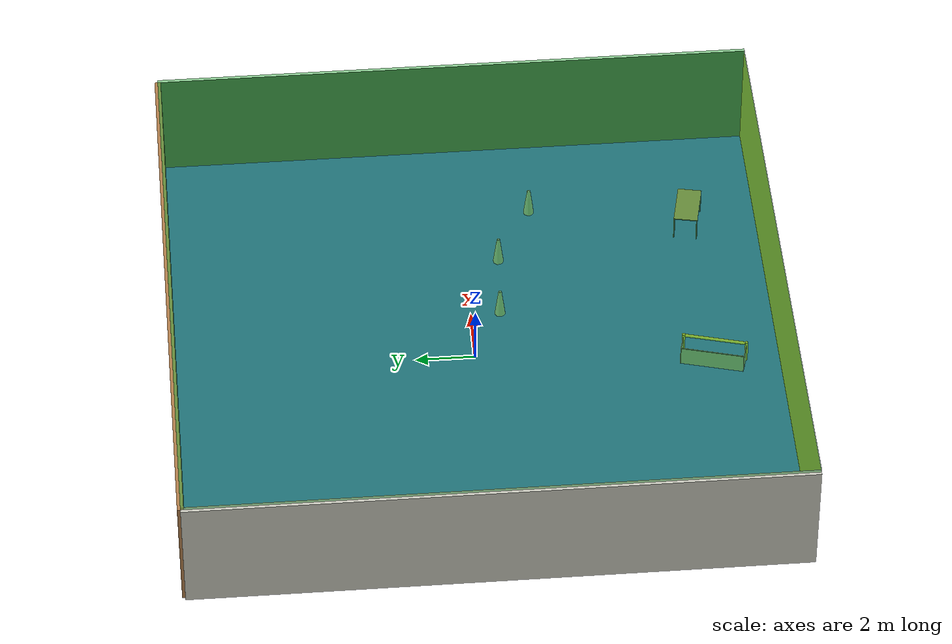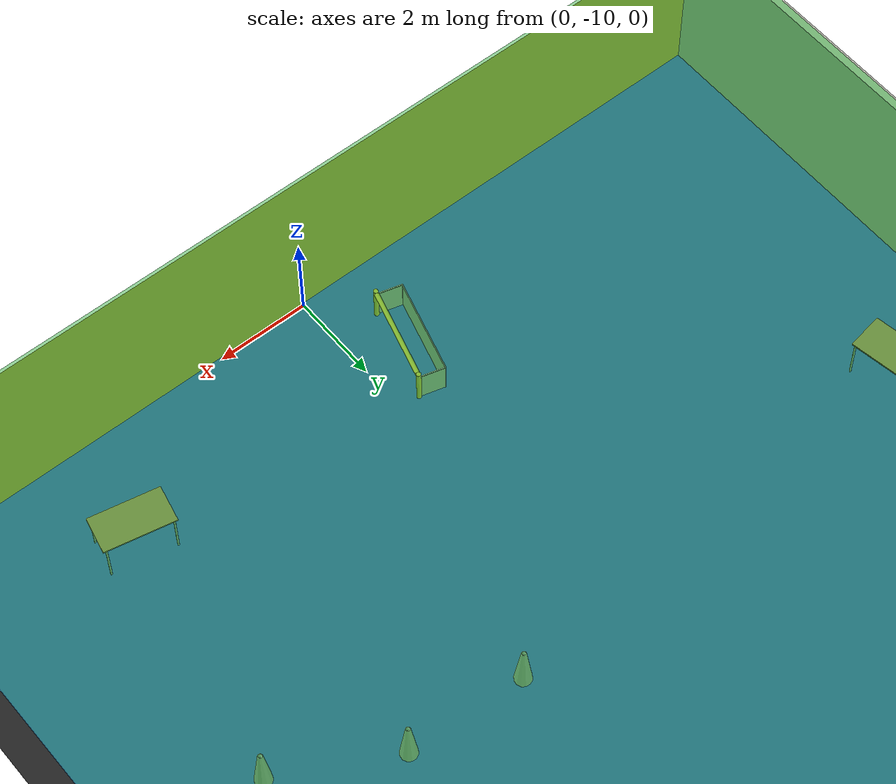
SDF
<sdf version="1.4">
 <world name="default">
  <physics type="ode">
   <max_step_size>0.001</max_step_size>
   <real_time_factor>1</real_time_factor>
   <real_time_update_rate>1000</real_time_update_rate>
   <gravity>0 0 -9.8</gravity>
  </physics>
  <scene><ambient>0.4 0.4 0.4 1</ambient><background>0.7 0.7 0.7 1</background><shadows>1</shadows></scene>
  <model name="Surrounding">
   <static>1</static>
   <link name="Ceiling">
    <collision name="Ceiling_Collision"><geometry><box><size>20 20 0.1</size></box></geometry></collision>
    <visual name="Ceiling_Visual">
     <geometry><box><size>20 20 0.1</size></box></geometry>
     <material>
      <script><uri>file://media/materials/scripts/gazebo.material</uri><name>Gazebo/GreenTransparent</name></script>
     </material>
    </visual>
    <pose>0 0 4.05 0 0 0</pose>
   </link>
   <link name="Wall_South">
    <collision name="Wall_South_Collision">
     <geometry><box><size>20 0 4</size></box></geometry>
     <pose>0 0 2 0 -0 0</pose>
    </collision>
    <visual name="Wall_South_Visual">
     <pose>0 0 2 0 -0 0</pose>
     <geometry><box><size>20 0 4</size></box></geometry>
     <material>
      <script><uri>file://media/materials/scripts/gazebo.material</uri><name>Gazebo/Gold</name></script>
     </material>
    </visual>
    <velocity_decay><linear>0</linear><angular>0</angular></velocity_decay>
    <pose>0 -10 0 0 -0 0</pose>
   </link>
   <link name="Wall_East">
    <collision name="Wall_21_Collision">
     <geometry><box><size>20 0 4</size></box></geometry>
     <pose>0 0 2 0 -0 0</pose>
    </collision>
    <visual name="Wall_21_Visual">
     <pose>0 0 2 0 -0 0</pose>
     <geometry><box><size>20 0 4</size></box></geometry>
     <material>
      <script><uri>file://media/materials/scripts/gazebo.material</uri><name>Gazebo/Road</name></script>
     </material>
    </visual>
    <velocity_decay><linear>0</linear><angular>0</angular></velocity_decay>
    <pose>10 0 0 0 -0 1.5708</pose>
   </link>
   <link name="Wall_North">
    <collision name="Wall_22_Collision">
     <geometry><box><size>20 0.2 4</size></box></geometry>
     <pose>0 0 2 0 -0 0</pose>
    </collision>
    <visual name="Wall_22_Visual">
     <pose>0 0 2 0 -0 0</pose>
     <geometry><box><size>20 0.2 4</size></box></geometry>
     <material>
      <script><uri>file://media/materials/scripts/gazebo.material</uri><name>Gazebo/WoodFloor</name></script>
     </material>
    </visual>
    <velocity_decay><linear>0</linear><angular>0</angular></velocity_decay>
    <pose>0 10 0 0 -0 0</pose>
   </link>
   <link name="Wall_West">
    <collision name="Wall_23_Collision">
     <geometry><box><size>20 0.2 4</size></box></geometry>
     <pose>0 0 2 0 -0 0</pose>
    </collision>
    <visual name="Wall_23_Visual">
     <pose>0 0 2 0 -0 0</pose>
     <geometry><box><size>20 0.2 4</size></box></geometry>
     <material>
      <script><uri>file://media/materials/scripts/gazebo.material</uri><name>Gazebo/PaintedWall</name></script>
     </material>
    </visual>
    <velocity_decay><linear>0</linear><angular>0</angular></velocity_decay>
    <pose>-10 0 0 0 0 -1.5708</pose>
   </link>
   <link name="Ground_link">
    <collision name="collision">
     <pose>0 0 .05 0 -0 0</pose>
     <geometry><box><size>20 20 0.1</size></box></geometry>
    </collision>
    <visual name="visual">
     <pose>0 0 .05 0 -0 0</pose>
     <geometry><box><size>20 20 0.1</size></box></geometry>
     <material>
      <script><uri>file://media/materials/scripts/gazebo.material</uri><name>Gazebo/BlueGlow</name></script>
     </material>
    </visual>
   </link>
   <static>1</static>
  </model>
  <spherical_coordinates>
   <surface_model>EARTH_WGS84</surface_model>
   <latitude_deg>0</latitude_deg>
   <longitude_deg>0</longitude_deg>
   <elevation>0</elevation>
   <heading_deg>0</heading_deg>
  </spherical_coordinates>
  <light name="lightball_0" type="diffuse">
   <diffuse>0.8 0.8 0.8 1</diffuse>
   <specular>0.2 0.2 0.2 1</specular>
   <attenuation>
    <range>100</range>
    <constant>0.7</constant>
    <linear>0.01</linear>
    <quadratic>0.001</quadratic>
   </attenuation>
   <direction>-0.5 0.1 -0.9</direction>
   <pose>4.02013098869 -1.3049462983 1.78896450579 0 0 0</pose>
  </light>
  <light name="lightball_1" type="diffuse">
   <diffuse>0.8 0.8 0.8 1</diffuse>
   <specular>0.2 0.2 0.2 1</specular>
   <attenuation>
    <range>100</range>
    <constant>0.7</constant>
    <linear>0.01</linear>
    <quadratic>0.001</quadratic>
   </attenuation>
   <direction>-0.5 0.1 -0.9</direction>
   <pose>6.55567884837 3.9423055596 1.52943119398 0 0 0</pose>
  </light>
  <light name="lightball_2" type="diffuse">
   <diffuse>0.8 0.8 0.8 1</diffuse>
   <specular>0.2 0.2 0.2 1</specular>
   <attenuation>
    <range>100</range>
    <constant>0.7</constant>
    <linear>0.01</linear>
    <quadratic>0.001</quadratic>
   </attenuation>
   <direction>-0.5 0.1 -0.9</direction>
   <pose>-5.75960610128 9.31102671041 2.55253337855 0 0 0</pose>
  </light>
  <light name="lightball_3" type="diffuse">
   <diffuse>0.8 0.8 0.8 1</diffuse>
   <specular>0.2 0.2 0.2 1</specular>
   <attenuation>
    <range>100</range>
    <constant>0.7</constant>
    <linear>0.01</linear>
    <quadratic>0.001</quadratic>
   </attenuation>
   <direction>-0.5 0.1 -0.9</direction>
   <pose>-5.84925249314 -0.636624079605 2.64293093522 0 0 0</pose>
  </light>
  <light name="lightball_4" type="diffuse">
   <diffuse>0.8 0.8 0.8 1</diffuse>
   <specular>0.2 0.2 0.2 1</specular>
   <attenuation>
    <range>100</range>
    <constant>0.7</constant>
    <linear>0.01</linear>
    <quadratic>0.001</quadratic>
   </attenuation>
   <direction>-0.5 0.1 -0.9</direction>
   <pose>8.77357012838 3.58342296324 2.99668027312 0 0 0</pose>
  </light>
  <light name="lightball_5" type="diffuse">
   <diffuse>0.8 0.8 0.8 1</diffuse>
   <specular>0.2 0.2 0.2 1</specular>
   <attenuation>
    <range>100</range>
    <constant>0.7</constant>
    <linear>0.01</linear>
    <quadratic>0.001</quadratic>
   </attenuation>
   <direction>-0.5 0.1 -0.9</direction>
   <pose>3.40262249114 -6.24354754815 3.71908007417 0 0 0</pose>
  </light>
  <light name="lightball_6" type="diffuse">
   <diffuse>0.8 0.8 0.8 1</diffuse>
   <specular>0.2 0.2 0.2 1</specular>
   <attenuation>
    <range>100</range>
    <constant>0.7</constant>
    <linear>0.01</linear>
    <quadratic>0.001</quadratic>
   </attenuation>
   <direction>-0.5 0.1 -0.9</direction>
   <pose>3.78549744026 0.937190912675 2.50724300076 0 0 0</pose>
  </light>
  <light name="lightball_7" type="diffuse">
   <diffuse>0.8 0.8 0.8 1</diffuse>
   <specular>0.2 0.2 0.2 1</specular>
   <attenuation>
    <range>100</range>
    <constant>0.7</constant>
    <linear>0.01</linear>
    <quadratic>0.001</quadratic>
   </attenuation>
   <direction>-0.5 0.1 -0.9</direction>
   <pose>3.73346629746 2.46930928258 3.31084544195 0 0 0</pose>
  </light>
  <include><uri>model://table</uri><pose>-7.73906116742 -1.39603274204 0 0 0 1.73705363598</pose></include>
  <include>
   <uri>model://robocup_3Dsim_goal</uri>
   <pose>-0.682246103388 -7.86372358823 0 0 0 2.87377829708</pose>
  </include>
  <include>
   <uri>model://construction_cone</uri>
   <pose>1.90413408595 -0.963962842885 0 0 0 0.688693039422</pose>
  </include>
  <include><uri>model://table</uri><pose>5.69652704439 -7.66922474026 0 0 0 2.93465859634</pose></include>
  <include>
   <uri>model://construction_cone</uri>
   <pose>4.42332809274 -1.12324334956 0 0 0 2.32831870156</pose>
  </include>
  <include>
   <uri>model://construction_cone</uri>
   <pose>6.74098045966 -2.35396669465 0 0 0 0.884310019402</pose>
  </include>
 </world>
</sdf>

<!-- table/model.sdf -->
<sdf version="1.5">
  <model name="table">
    <static>true</static>
    <link name="link">
      <collision name="surface">
        <pose>0 0 1.0 0 0 0</pose>
        <geometry>
          <box>
            <size>1.5 0.8 0.03</size>
          </box>
        </geometry>
        <surface>
          <friction>
            <ode>
              <mu>0.6</mu>
              <mu2>0.6</mu2>
            </ode>
          </friction>
        </surface>
      </collision>
      <visual name="visual1">
        <pose>0 0 1.0 0 0 0</pose>
        <geometry>
          <box>
            <size>1.5 0.8 0.03</size>
          </box>
        </geometry>
        <material>
          <script>
            <uri>model://media/materials/scripts/gazebo.material</uri>
            <name>Gazebo/Wood</name>
          </script>
        </material>
      </visual>
      <collision name="front_left_leg">
        <pose>0.68 0.38 0.5 0 0 0</pose>
        <geometry>
          <cylinder>
            <radius>0.02</radius>
            <length>1.0</length>
          </cylinder>
        </geometry>
      </collision>
      <visual name="front_left_leg">
        <pose>0.68 0.38 0.5 0 0 0</pose>
        <geometry>
          <cylinder>
            <radius>0.02</radius>
            <length>1.0</length>
          </cylinder>
        </geometry>
        <material>
          <script>
            <uri>model://media/materials/scripts/gazebo.material</uri>
            <name>Gazebo/Grey</name>
          </script>
        </material>
      </visual>
      <collision name="front_right_leg">
        <pose>0.68 -0.38 0.5 0 0 0</pose>
        <geometry>
          <cylinder>
            <radius>0.02</radius>
            <length>1.0</length>
          </cylinder>
        </geometry>
      </collision>
      <visual name="front_right_leg">
        <pose>0.68 -0.38 0.5 0 0 0</pose>
        <geometry>
          <cylinder>
            <radius>0.02</radius>
            <length>1.0</length>
          </cylinder>
        </geometry>
        <material>
          <script>
            <uri>model://media/materials/scripts/gazebo.material</uri>
            <name>Gazebo/Grey</name>
          </script>
        </material>
      </visual>
      <collision name="back_right_leg">
        <pose>-0.68 -0.38 0.5 0 0 0</pose>
        <geometry>
          <cylinder>
            <radius>0.02</radius>
            <length>1.0</length>
          </cylinder>
        </geometry>
      </collision>
      <visual name="back_right_leg">
        <pose>-0.68 -0.38 0.5 0 0 0</pose>
        <geometry>
          <cylinder>
            <radius>0.02</radius>
            <length>1.0</length>
          </cylinder>
        </geometry>
        <material>
          <script>
            <uri>model://media/materials/scripts/gazebo.material</uri>
            <name>Gazebo/Grey</name>
          </script>
        </material>
      </visual>
      <collision name="back_left_leg">
        <pose>-0.68 0.38 0.5 0 0 0</pose>
        <geometry>
          <cylinder>
            <radius>0.02</radius>
            <length>1.0</length>
          </cylinder>
        </geometry>
      </collision>
      <visual name="back_left_leg">
        <pose>-0.68 0.38 0.5 0 0 0</pose>
        <geometry>
          <cylinder>
            <radius>0.02</radius>
            <length>1.0</length>
          </cylinder>
        </geometry>
        <material>
          <script>
            <uri>model://media/materials/scripts/gazebo.material</uri>
            <name>Gazebo/Grey</name>
          </script>
        </material>
      </visual>
    </link>
  </model>
</sdf>

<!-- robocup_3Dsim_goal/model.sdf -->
<sdf version="1.5">
  <model name="robocup_3d_goal">
    <static>true</static>
    <link name="left_post">
      <pose>0 1.05 0.45 0 0 0</pose>
      <collision name="collision">
        <geometry>
          <cylinder>
            <radius>0.05</radius>
            <length>0.9</length>
          </cylinder>
        </geometry>
      </collision>
      <visual name="visual">
        <geometry>
          <cylinder>
            <radius>0.05</radius>
            <length>0.9</length>
          </cylinder>
        </geometry>
        <material>
          <script>
            <uri>file://media/materials/scripts/gazebo.material</uri>
            <name>Gazebo/ZincYellow</name>
          </script>
        </material>
      </visual>
    </link>
    <link name="left_support_horiz_lower">
      <pose>0.30 1.05 0.01 0 0 0</pose>
      <collision name="collision">
        <geometry>
          <box>
            <size>0.50 0.02 0.02</size>
          </box>
        </geometry>
      </collision>
      <visual name="visual">
        <geometry>
          <box>
            <size>0.50 0.02 0.02</size>
          </box>
        </geometry>
        <material>
          <script>
            <uri>file://media/materials/scripts/gazebo.material</uri>
            <name>Gazebo/White</name>
          </script>
        </material>
      </visual>
    </link>
    <link name="left_support_horiz_upper">
      <pose>0.30 1.05 0.79 0 0 0</pose>
      <collision name="collision">
        <geometry>
          <box>
            <size>0.50 0.02 0.02</size>
          </box>
        </geometry>
      </collision>
      <visual name="visual">
        <geometry>
          <box>
            <size>0.50 0.02 0.02</size>
          </box>
        </geometry>
        <material>
          <script>
            <uri>file://media/materials/scripts/gazebo.material</uri>
            <name>Gazebo/White</name>
          </script>
        </material>
      </visual>
    </link>
    <link name="left_support_vertical">
      <pose>0.56 1.05 0.4 0 1.5708 0</pose>
      <collision name="collision">
        <geometry>
          <box>
            <size>0.80 0.02 0.02</size>
          </box>
        </geometry>
      </collision>
      <visual name="visual">
        <geometry>
          <box>
            <size>0.80 0.02 0.02</size>
          </box>
        </geometry>
        <material>
          <script>
            <uri>file://media/materials/scripts/gazebo.material</uri>
            <name>Gazebo/White</name>
          </script>
        </material>
      </visual>
    </link>
    <link name="right_support_horiz_lower">
      <pose>0.30 -1.05 0.01 0 0 0</pose>
      <collision name="collision">
        <geometry>
          <box>
            <size>0.50 0.02 0.02</size>
          </box>
        </geometry>
      </collision>
      <visual name="visual">
        <geometry>
          <box>
            <size>0.50 0.02 0.02</size>
          </box>
        </geometry>
        <material>
          <script>
            <uri>file://media/materials/scripts/gazebo.material</uri>
            <name>Gazebo/White</name>
          </script>
        </material>
      </visual>
    </link>
    <link name="right_support_horiz_upper">
      <pose>0.30 -1.05 0.79 0 0 0</pose>
      <collision name="collision">
        <geometry>
          <box>
            <size>0.50 0.02 0.02</size>
          </box>
        </geometry>
      </collision>
      <visual name="visual">
        <geometry>
          <box>
            <size>0.50 0.02 0.02</size>
          </box>
        </geometry>
        <material>
          <script>
            <uri>file://media/materials/scripts/gazebo.material</uri>
            <name>Gazebo/White</name>
          </script>
        </material>
      </visual>
    </link>
    <link name="right_support_vertical">
      <pose>0.56 -1.05 0.4 0 1.5708 0</pose>
      <collision name="collision">
        <geometry>
          <box>
            <size>0.80 0.02 0.02</size>
          </box>
        </geometry>
      </collision>
      <visual name="visual">
        <geometry>
          <box>
            <size>0.80 0.02 0.02</size>
          </box>
        </geometry>
        <material>
          <script>
            <uri>file://media/materials/scripts/gazebo.material</uri>
            <name>Gazebo/White</name>
          </script>
        </material>
      </visual>
    </link>
    <link name="center_support_horiz_lower">
      <pose>0.56 0 0.01 0 1.5708 0</pose>
      <collision name="collision">
        <geometry>
          <box>
            <size>0.02 2.08 0.02</size>
          </box>
        </geometry>
      </collision>
      <visual name="visual">
        <geometry>
          <box>
            <size>0.02 2.08 0.02</size>
          </box>
        </geometry>
        <material>
          <script>
            <uri>file://media/materials/scripts/gazebo.material</uri>
            <name>Gazebo/White</name>
          </script>
        </material>
      </visual>
    </link>
    <link name="center_support_horiz_upper">
      <pose>0.56 0 0.79 0 1.5708 0</pose>
      <collision name="collision">
        <geometry>
          <box>
            <size>0.02 2.08 0.02</size>
          </box>
        </geometry>
      </collision>
      <visual name="visual">
        <geometry>
          <box>
            <size>0.02 2.08 0.02</size>
          </box>
        </geometry>
        <material>
          <script>
            <uri>file://media/materials/scripts/gazebo.material</uri>
            <name>Gazebo/White</name>
          </script>
        </material>
      </visual>
    </link>
    <link name="right_post">
      <pose>0 -1.05 0.45 0 0 0</pose>
      <collision name="collision">
        <geometry>
          <cylinder>
            <radius>0.05</radius>
            <length>0.9</length>
          </cylinder>
        </geometry>
      </collision>
      <visual name="visual">
        <geometry>
          <cylinder>
            <radius>0.05</radius>
            <length>0.9</length>
          </cylinder>
        </geometry>
        <material>
          <script>
            <uri>file://media/materials/scripts/gazebo.material</uri>
            <name>Gazebo/ZincYellow</name>
          </script>
        </material>
      </visual>
    </link>
    <link name="crossbar">
      <pose>0 0 0.85 1.57 1.57 0</pose>
      <collision name="collision">
        <geometry>
          <cylinder>
            <radius>0.05</radius>
            <length>2.0</length>
          </cylinder>
        </geometry>
      </collision>
      <visual name="visual">
        <geometry>
          <cylinder>
            <radius>0.05</radius>
            <length>2.0</length>
          </cylinder>
        </geometry>
        <material>
          <script>
            <uri>file://media/materials/scripts/gazebo.material</uri>
            <name>Gazebo/ZincYellow</name>
          </script>
        </material>
      </visual>
    </link>
    <link name="center_net">
      <pose>0.56 0 0.40 0 0 0</pose>
      <collision name="collision">
        <geometry>
          <box>
            <size>0.01 2.1 0.80</size>
          </box>
        </geometry>
      </collision>
      <visual name="visual">
        <geometry>
          <box>
            <size>0.01 2.1 0.80</size>
          </box>
        </geometry>
        <material>
          <script>
            <uri>model://../model_source/models/robocup09_spl_field/materials/scripts/</uri>
            <uri>model://../model_source/models/robocup09_spl_field/materials/textures/</uri>
            <name>RoboCup/Net</name>
          </script>
        </material>
      </visual>
    </link>
    <link name="left_net">
      <pose>0.30 1.05 0.40 0 0 0</pose>
      <collision name="collision">
        <geometry>
          <box>
            <size>0.50 0.01 0.76</size>
          </box>
        </geometry>
      </collision>
      <visual name="visual">
        <geometry>
          <box>
            <size>0.50 0.01 0.76</size>
          </box>
        </geometry>
        <material>
          <script>
            <uri>model://../model_source/models/robocup09_spl_field/materials/scripts/</uri>
            <uri>model://../model_source/models/robocup09_spl_field/materials/textures/</uri>
            <name>RoboCup/Net</name>
          </script>
        </material>
      </visual>
    </link>
    <link name="right_net">
      <pose>0.30 -1.05 0.40 0 0 0</pose>
      <collision name="collision">
        <geometry>
          <box>
            <size>0.50 0.01 0.76</size>
          </box>
        </geometry>
      </collision>
      <visual name="visual">
        <geometry>
          <box>
            <size>0.50 0.01 0.76</size>
          </box>
        </geometry>
        <material>
          <script>
            <uri>model://../model_source/models/robocup09_spl_field/materials/scripts/</uri>
            <uri>model://../model_source/models/robocup09_spl_field/materials/textures/</uri>
            <name>RoboCup/Net</name>
          </script>
        </material>
      </visual>
    </link>
  </model>
</sdf>

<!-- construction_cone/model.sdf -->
<sdf version="1.5">
  <model name="Construction Cone">
    <link name="link">
      <collision name="collision">
        <geometry>
          <mesh>
            <scale>10 10 10</scale>
            <uri>file://isr-testbed/construction_cone/meshes/construction_cone.dae</uri>
          </mesh>
        </geometry>
      </collision>
      <visual name="visual">
        <geometry>
          <mesh>
            <scale>10 10 10</scale>
            <uri>file://isr-testbed/construction_cone/meshes/construction_cone.dae</uri>
          </mesh>
        </geometry>
      </visual>
    </link>
  </model>
</sdf>
